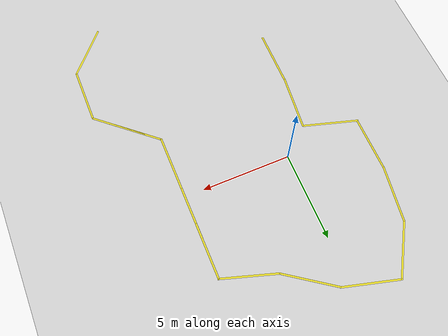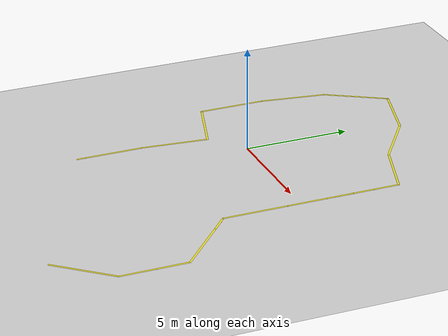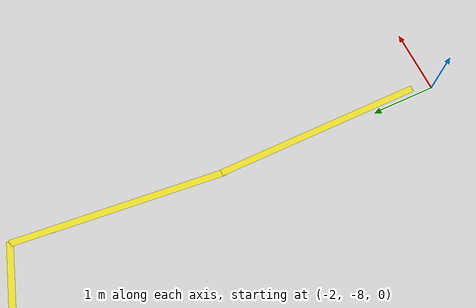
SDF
<sdf version="1.6">
 <world name="default">
  <light name="sun" type="directional">
   <pose>0 0 10 0 -0 0</pose>
   <diffuse>0.8 0.8 0.8 1</diffuse>
   <specular>0.1 0.1 0.1 1</specular>
   <attenuation>
    <range>1000</range>
    <constant>0.9</constant>
    <linear>0.01</linear>
    <quadratic>0.001</quadratic>
   </attenuation>
   <direction>-0.5 0.5 -1</direction>
  </light>
  <model name="ground_plane">
   <static>1</static>
   <link name="link">
    <collision name="collision">
     <geometry><plane><normal>0 0 1</normal><size>100 100</size></plane></geometry>
     <surface><friction><ode><mu>100</mu><mu2>50</mu2></ode></friction></surface>
    </collision>
    <visual name="visual">
     <cast_shadows>0</cast_shadows>
     <geometry><plane><normal>0 0 1</normal><size>100 100</size></plane></geometry>
     <material>
      <script><uri>file://media/materials/scripts/gazebo.material</uri><name>Gazebo/Grey</name></script>
     </material>
    </visual>
   </link>
  </model>
  <gravity>0 0 -9.8</gravity>
  <magnetic_field>6e-06 2.3e-05 -4.2e-05</magnetic_field>
  <atmosphere type="adiabatic"/>
  <physics name="default_physics" default="0" type="ode">
   <max_step_size>0.001</max_step_size>
   <real_time_factor>1</real_time_factor>
   <real_time_update_rate>1000</real_time_update_rate>
  </physics>
  <scene><ambient>0.4 0.4 0.4 1</ambient><background>0.7 0.7 0.7 1</background><shadows>1</shadows></scene>
  <spherical_coordinates>
   <surface_model>EARTH_WGS84</surface_model>
   <latitude_deg>0</latitude_deg>
   <longitude_deg>0</longitude_deg>
   <elevation>0</elevation>
   <heading_deg>0</heading_deg>
  </spherical_coordinates>
  <model name="yellow line">
   <static>1</static>
   <link name="link_ground">
    <collision name="collision">
     <geometry><plane><normal>0 0 1</normal><size>0.1 3.2</size></plane></geometry>
     <surface><friction><ode><mu>100</mu><mu2>50</mu2></ode></friction></surface>
    </collision>
    <visual name="visual_ground">
     <cast_shadows>0</cast_shadows>
     <geometry><plane><normal>0 0 1</normal><size>0.1 3.2</size></plane></geometry>
     <material>
      <script><uri>file://media/materials/scripts/gazebo.material</uri><name>Gazebo/Yellow</name></script>
     </material>
    </visual>
   </link>
   <pose>8.2 -10.82 0.05 0 0 -0.719999</pose>
  </model>
  <model name="yellow line_0">
   <static>1</static>
   <link name="link_ground">
    <collision name="collision">
     <geometry><plane><normal>0 0 1</normal><size>0.1 3.2</size></plane></geometry>
     <surface><friction><ode><mu>100</mu><mu2>50</mu2></ode></friction></surface>
    </collision>
    <visual name="visual_ground">
     <cast_shadows>0</cast_shadows>
     <geometry><plane><normal>0 0 1</normal><size>0.1 3.2</size></plane></geometry>
     <material>
      <script><uri>file://media/materials/scripts/gazebo.material</uri><name>Gazebo/Yellow</name></script>
     </material>
    </visual>
   </link>
   <pose>9.24 -8.05 0.05 0 -0 0</pose>
  </model>
  <model name="yellow line_1">
   <static>1</static>
   <link name="link_ground">
    <collision name="collision">
     <geometry><plane><normal>0 0 1</normal><size>0.1 3.2</size></plane></geometry>
     <surface><friction><ode><mu>100</mu><mu2>50</mu2></ode></friction></surface>
    </collision>
    <visual name="visual_ground">
     <cast_shadows>0</cast_shadows>
     <geometry><plane><normal>0 0 1</normal><size>0.1 3.2</size></plane></geometry>
     <material>
      <script><uri>file://media/materials/scripts/gazebo.material</uri><name>Gazebo/Yellow</name></script>
     </material>
    </visual>
   </link>
   <pose>8.05 -5.42 0.05 0 -0 0.849999</pose>
  </model>
  <model name="yellow line_3">
   <static>1</static>
   <link name="link_ground">
    <collision name="collision">
     <geometry><plane><normal>0 0 1</normal><size>0.1 3.2</size></plane></geometry>
     <surface><friction><ode><mu>100</mu><mu2>50</mu2></ode></friction></surface>
    </collision>
    <visual name="visual_ground">
     <cast_shadows>0</cast_shadows>
     <geometry><plane><normal>0 0 1</normal><size>0.1 3.2</size></plane></geometry>
     <material>
      <script><uri>file://media/materials/scripts/gazebo.material</uri><name>Gazebo/Yellow</name></script>
     </material>
    </visual>
   </link>
   <pose>6.1 -2.14 0.05 0 -0 0</pose>
  </model>
  <model name="yellow line_4">
   <static>1</static>
   <link name="link_ground">
    <collision name="collision">
     <geometry><plane><normal>0 0 1</normal><size>0.1 3.2</size></plane></geometry>
     <surface><friction><ode><mu>100</mu><mu2>50</mu2></ode></friction></surface>
    </collision>
    <visual name="visual_ground">
     <cast_shadows>0</cast_shadows>
     <geometry><plane><normal>0 0 1</normal><size>0.1 3.2</size></plane></geometry>
     <material>
      <script><uri>file://media/materials/scripts/gazebo.material</uri><name>Gazebo/Yellow</name></script>
     </material>
    </visual>
   </link>
   <pose>6.1 0.95 0.05 0 -0 0</pose>
  </model>
  <model name="yellow line_5">
   <static>1</static>
   <link name="link_ground">
    <collision name="collision">
     <geometry><plane><normal>0 0 1</normal><size>0.1 3.2</size></plane></geometry>
     <surface><friction><ode><mu>100</mu><mu2>50</mu2></ode></friction></surface>
    </collision>
    <visual name="visual_ground">
     <cast_shadows>0</cast_shadows>
     <geometry><plane><normal>0 0 1</normal><size>0.1 3.2</size></plane></geometry>
     <material>
      <script><uri>file://media/materials/scripts/gazebo.material</uri><name>Gazebo/Yellow</name></script>
     </material>
    </visual>
   </link>
   <pose>6.105 3.2 0.05 0 -0 0</pose>
  </model>
  <model name="yellow line_6">
   <static>1</static>
   <link name="link_ground">
    <collision name="collision">
     <geometry><plane><normal>0 0 1</normal><size>0.1 3.2</size></plane></geometry>
     <surface><friction><ode><mu>100</mu><mu2>50</mu2></ode></friction></surface>
    </collision>
    <visual name="visual_ground">
     <cast_shadows>0</cast_shadows>
     <geometry><plane><normal>0 0 1</normal><size>0.1 3.2</size></plane></geometry>
     <material>
      <script><uri>file://media/materials/scripts/gazebo.material</uri><name>Gazebo/Yellow</name></script>
     </material>
    </visual>
   </link>
   <pose>4.63 5.25 0.05 0 -0 1.26</pose>
  </model>
  <model name="yellow line_7">
   <static>1</static>
   <link name="link_ground">
    <collision name="collision">
     <geometry><plane><normal>0 0 1</normal><size>0.1 3.2</size></plane></geometry>
     <surface><friction><ode><mu>100</mu><mu2>50</mu2></ode></friction></surface>
    </collision>
    <visual name="visual_ground">
     <cast_shadows>0</cast_shadows>
     <geometry><plane><normal>0 0 1</normal><size>0.1 3.2</size></plane></geometry>
     <material>
      <script><uri>file://media/materials/scripts/gazebo.material</uri><name>Gazebo/Yellow</name></script>
     </material>
    </visual>
   </link>
   <pose>1.85 6.65 0.05 0 -0 0.95</pose>
  </model>
  <model name="yellow line_8">
   <static>1</static>
   <link name="link_ground">
    <collision name="collision">
     <geometry><plane><normal>0 0 1</normal><size>0.1 3.2</size></plane></geometry>
     <surface><friction><ode><mu>100</mu><mu2>50</mu2></ode></friction></surface>
    </collision>
    <visual name="visual_ground">
     <cast_shadows>0</cast_shadows>
     <geometry><plane><normal>0 0 1</normal><size>0.1 3.2</size></plane></geometry>
     <material>
      <script><uri>file://media/materials/scripts/gazebo.material</uri><name>Gazebo/Yellow</name></script>
     </material>
    </visual>
   </link>
   <pose>-0.95 8 0.05 0 -0 1.3</pose>
  </model>
  <model name="yellow line_9">
   <static>1</static>
   <link name="link_ground">
    <collision name="collision">
     <geometry><plane><normal>0 0 1</normal><size>0.1 3.2</size></plane></geometry>
     <surface><friction><ode><mu>100</mu><mu2>50</mu2></ode></friction></surface>
    </collision>
    <visual name="visual_ground">
     <cast_shadows>0</cast_shadows>
     <geometry><plane><normal>0 0 1</normal><size>0.1 3.2</size></plane></geometry>
     <material>
      <script><uri>file://media/materials/scripts/gazebo.material</uri><name>Gazebo/Yellow</name></script>
     </material>
    </visual>
   </link>
   <pose>-3.3 7.1 0.05 0 0 -0.549999</pose>
  </model>
  <model name="yellow line_11">
   <static>1</static>
   <link name="link_ground">
    <collision name="collision">
     <geometry><plane><normal>0 0 1</normal><size>0.1 3.2</size></plane></geometry>
     <surface><friction><ode><mu>100</mu><mu2>50</mu2></ode></friction></surface>
    </collision>
    <visual name="visual_ground">
     <cast_shadows>0</cast_shadows>
     <geometry><plane><normal>0 0 1</normal><size>0.1 3.2</size></plane></geometry>
     <material>
      <script><uri>file://media/materials/scripts/gazebo.material</uri><name>Gazebo/Yellow</name></script>
     </material>
    </visual>
   </link>
   <pose>-4.35 4.2 0.05 0 0 -0.150001</pose>
  </model>
  <model name="yellow line_12">
   <static>1</static>
   <link name="link_ground">
    <collision name="collision">
     <geometry><plane><normal>0 0 1</normal><size>0.1 3.2</size></plane></geometry>
     <surface><friction><ode><mu>100</mu><mu2>50</mu2></ode></friction></surface>
    </collision>
    <visual name="visual_ground">
     <cast_shadows>0</cast_shadows>
     <geometry><plane><normal>0 0 1</normal><size>0.1 3.2</size></plane></geometry>
     <material>
      <script><uri>file://media/materials/scripts/gazebo.material</uri><name>Gazebo/Yellow</name></script>
     </material>
    </visual>
   </link>
   <pose>-4.58 1.1 0.05 0 -0 0</pose>
  </model>
  <model name="yellow line_13">
   <static>1</static>
   <link name="link_ground">
    <collision name="collision">
     <geometry><plane><normal>0 0 1</normal><size>0.1 3.2</size></plane></geometry>
     <surface><friction><ode><mu>100</mu><mu2>50</mu2></ode></friction></surface>
    </collision>
    <visual name="visual_ground">
     <cast_shadows>0</cast_shadows>
     <geometry><plane><normal>0 0 1</normal><size>0.1 3.2</size></plane></geometry>
     <material>
      <script><uri>file://media/materials/scripts/gazebo.material</uri><name>Gazebo/Yellow</name></script>
     </material>
    </visual>
   </link>
   <pose>-3.1 -0.92 0.05 0 -0 1.28</pose>
  </model>
  <model name="yellow line_15">
   <static>1</static>
   <link name="link_ground">
    <collision name="collision">
     <geometry><plane><normal>0 0 1</normal><size>0.1 3.2</size></plane></geometry>
     <surface><friction><ode><mu>100</mu><mu2>50</mu2></ode></friction></surface>
    </collision>
    <visual name="visual_ground">
     <cast_shadows>0</cast_shadows>
     <geometry><plane><normal>0 0 1</normal><size>0.1 3.2</size></plane></geometry>
     <material>
      <script><uri>file://media/materials/scripts/gazebo.material</uri><name>Gazebo/Yellow</name></script>
     </material>
    </visual>
   </link>
   <pose>-1.75 -2.95 0.05 0 0 -0.1</pose>
  </model>
  <model name="yellow line_16">
   <static>1</static>
   <link name="link_ground">
    <collision name="collision">
     <geometry><plane><normal>0 0 1</normal><size>0.1 3.2</size></plane></geometry>
     <surface><friction><ode><mu>100</mu><mu2>50</mu2></ode></friction></surface>
    </collision>
    <visual name="visual_ground">
     <cast_shadows>0</cast_shadows>
     <geometry><plane><normal>0 0 1</normal><size>0.1 3.2</size></plane></geometry>
     <material>
      <script><uri>file://media/materials/scripts/gazebo.material</uri><name>Gazebo/Yellow</name></script>
     </material>
    </visual>
   </link>
   <pose>-1.9 -6.1 0.05 0 -0 0</pose>
  </model>
  <model name="yellow line_10">
   <static>1</static>
   <link name="link_ground">
    <collision name="collision">
     <geometry><plane><normal>0 0 1</normal><size>0.1 3.2</size></plane></geometry>
     <surface><friction><ode><mu>100</mu><mu2>50</mu2></ode></friction></surface>
    </collision>
    <visual name="visual_ground">
     <cast_shadows>0</cast_shadows>
     <geometry><plane><normal>0 0 1</normal><size>0.1 3.2</size></plane></geometry>
     <material>
      <script><uri>file://media/materials/scripts/gazebo.material</uri><name>Gazebo/Yellow</name></script>
     </material>
    </visual>
   </link>
   <pose>7.3 -4.76 0.05 0 -0 0.849998</pose>
  </model>
 </world>
</sdf>
